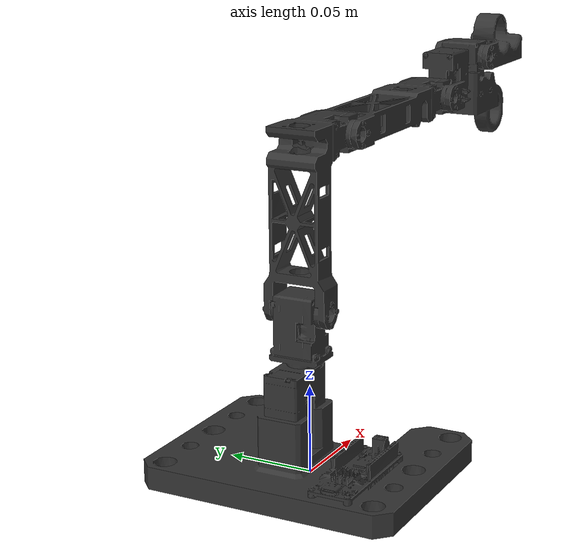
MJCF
<mujoco model="omx_l_drawing">
  <compiler angle="radian" meshdir="." autolimits="true"/>

  <option integrator="implicitfast"/>

  <default>
    <joint armature="0.1" damping="10.0"/>
    <position kp="1000" kv="200" forcerange="-100 100"/>
  </default>

  <asset>
    <mesh name="leader_01_base_roll" content_type="model/stl" file="urdf/omx_l/leader_01_base_roll.stl" scale="0.001 0.001 0.001"/>
    <mesh name="leader_02_base_tilt_revised" content_type="model/stl" file="urdf/omx_l/leader_02_base_tilt_revised.stl" scale="0.001 0.001 0.001"/>
    <mesh name="leader_03_middle_vertical" content_type="model/stl" file="urdf/omx_l/leader_03_middle_vertical.stl" scale="0.001 0.001 0.001"/>
    <mesh name="leader_04_middle_horizontal" content_type="model/stl" file="urdf/omx_l/leader_04_middle_horizontal.stl" scale="0.001 0.001 0.001"/>
    <mesh name="leader_05_tip_roll" content_type="model/stl" file="urdf/omx_l/leader_05_tip_roll.stl" scale="0.001 0.001 0.001"/>
    <mesh name="leader_06_tip_pan_revised" content_type="model/stl" file="urdf/omx_l/leader_06_tip_pan_revised.stl" scale="0.001 0.001 0.001"/>
    <mesh name="leader_07_tip_grip" content_type="model/stl" file="urdf/omx_l/leader_07_tip_grip.stl" scale="0.001 0.001 0.001"/>
  </asset>

  <worldbody>
    <geom type="mesh" rgba="0.2 0.2 0.2 1" mesh="leader_01_base_roll"/>
    <body name="link1" pos="-0.0095 0 0.0545">
      <inertial pos="2.83504e-05 0.000275113 0.0312809" quat="0.999997 -0.00216307 -0.000542784 -0.000164833" mass="0.025271" diaginertia="4.40774e-06 4.21813e-06 1.868e-06"/>
      <joint name="joint1" pos="0 0 0" axis="0 0 1" range="-3.14159 3.14159"/>
      <geom type="mesh" rgba="0.2 0.2 0.2 1" mesh="leader_02_base_tilt_revised"/>
      <body name="link2" pos="0 0 0.042">
        <inertial pos="0.0142492 0.000172411 0.0687606" quat="0.693296 0.108195 0.107569 0.704318" mass="0.0477062" diaginertia="6.58166e-05 6.2121e-05 1.19626e-05"/>
        <joint name="joint2" pos="0 0 0" axis="0 1 0" range="-1.5 1.5"/>
        <geom type="mesh" rgba="0.2 0.2 0.2 1" mesh="leader_03_middle_vertical"/>
        <body name="link3" pos="0.0375 0 0.09">
          <inertial pos="0.0828274 0.000172415 0.000182392" quat="-0.000316969 0.706928 0.000801835 0.707285" mass="0.0477062" diaginertia="9.72316e-05 9.4567e-05 5.6039e-06"/>
          <joint name="joint3" pos="0 0 0" axis="0 1 0" range="-1.5 1.4"/>
          <geom type="mesh" rgba="0.2 0.2 0.2 1" mesh="leader_04_middle_horizontal"/>
          <body name="link4" pos="0.1275 0 0">
            <inertial pos="0.0222628 6.54337e-05 0.00588644" quat="0.610774 0.372714 0.382467 0.584601" mass="0.0304318" diaginertia="7.46512e-06 7.23252e-06 4.78358e-06"/>
            <joint name="joint4" pos="0 0 0" axis="0 1 0" range="-1.7 1.97"/>
            <geom type="mesh" rgba="0.2 0.2 0.2 1" mesh="leader_05_tip_roll"/>
            <body name="link5" pos="0.0287 0 0">
              <inertial pos="0.0361242 0.000280933 2.35744e-05" quat="0.334179 0.621672 0.630074 0.323814" mass="0.0396297" diaginertia="2.16991e-05 1.92925e-05 6.42507e-06"/>
              <joint name="joint5" pos="0 0 0" axis="1 0 0" range="-1.5708 1.5708"/>
              <geom type="mesh" rgba="0.2 0.2 0.2 1" mesh="leader_06_tip_pan_revised"/>
              <site name="link5_site" pos="0.0590 0 0.0175"/>

              <!-- Gripper link -->
              <body name="link6" pos="0.0298 0 0.0175">
                <inertial pos="0.028486 3.99103e-05 0.000349951" quat="0.00185238 0.695527 -0.0035435 0.718489" mass="0.0196115" diaginertia="1.10325e-05 9.04111e-06 3.3363e-06"/>
                <joint name="gripper_joint_1" pos="0 0 0" axis="0 1 0" range="-0.5 0.5"/>
                <geom type="mesh" rgba="0.2 0.2 0.2 1" mesh="leader_07_tip_grip"/>

                <!-- End effector site for tracking -->
                <body name="end_effector_target" pos="0.028486 0 0">
                  <geom type="box" pos="0 0 0" size="0.001 0.001 0.001" rgba="1 0 0 1" contype="0" conaffinity="0"/>
                  <inertial pos="0 0 0" mass="0.001" diaginertia="1e-06 1e-06 1e-06" />
                </body>
              </body>
            </body>
          </body>
        </body>
      </body>
    </body>
  </worldbody>

  <!-- Exclude contact information -->
  <contact>
    <exclude body1="world" body2="link1"/>
  </contact>

  <!-- Define actuators -->
  <actuator>
    <position name="actuator_joint1" joint="joint1" ctrlrange="-3.142 3.142"/>
    <position name="actuator_joint2" joint="joint2" ctrlrange="-1.5 1.5"/>
    <position name="actuator_joint3" joint="joint3" ctrlrange="-1.5 1.4"/>
    <position name="actuator_joint4" joint="joint4" ctrlrange="-1.7 1.97"/>
    <position name="actuator_joint5" joint="joint5" ctrlrange="-1.5708 1.5708"/>
    <position name="actuator_gripper_joint" joint="gripper_joint_1" ctrlrange="-0.5 0.5"/>
  </actuator>
</mujoco>
